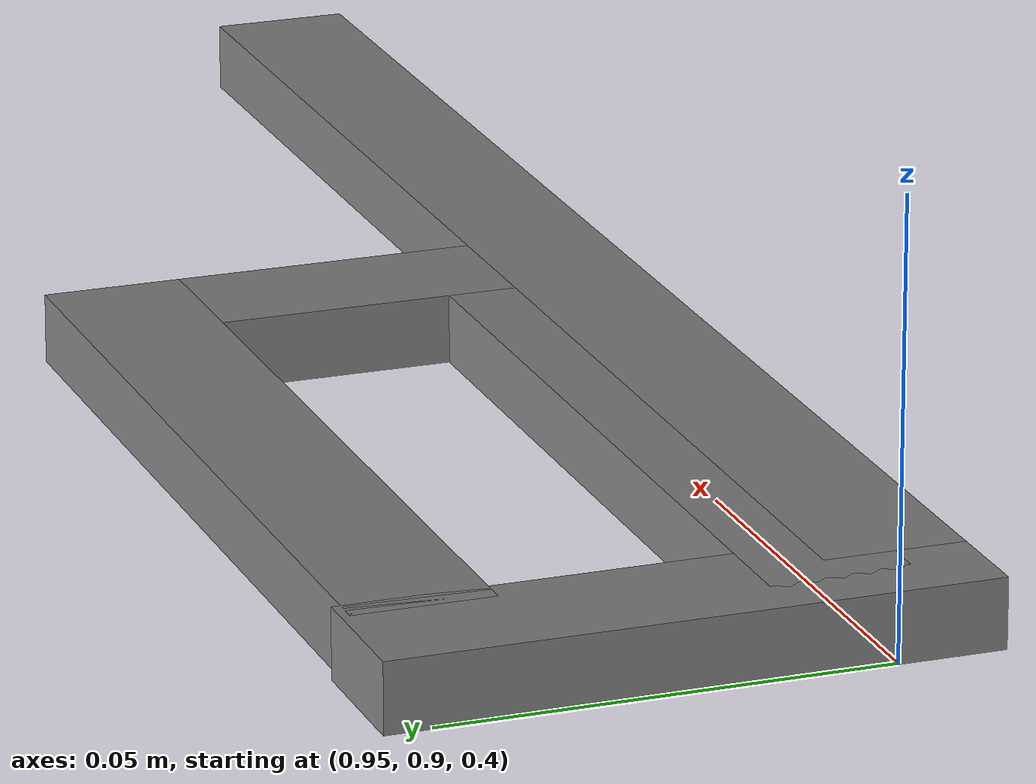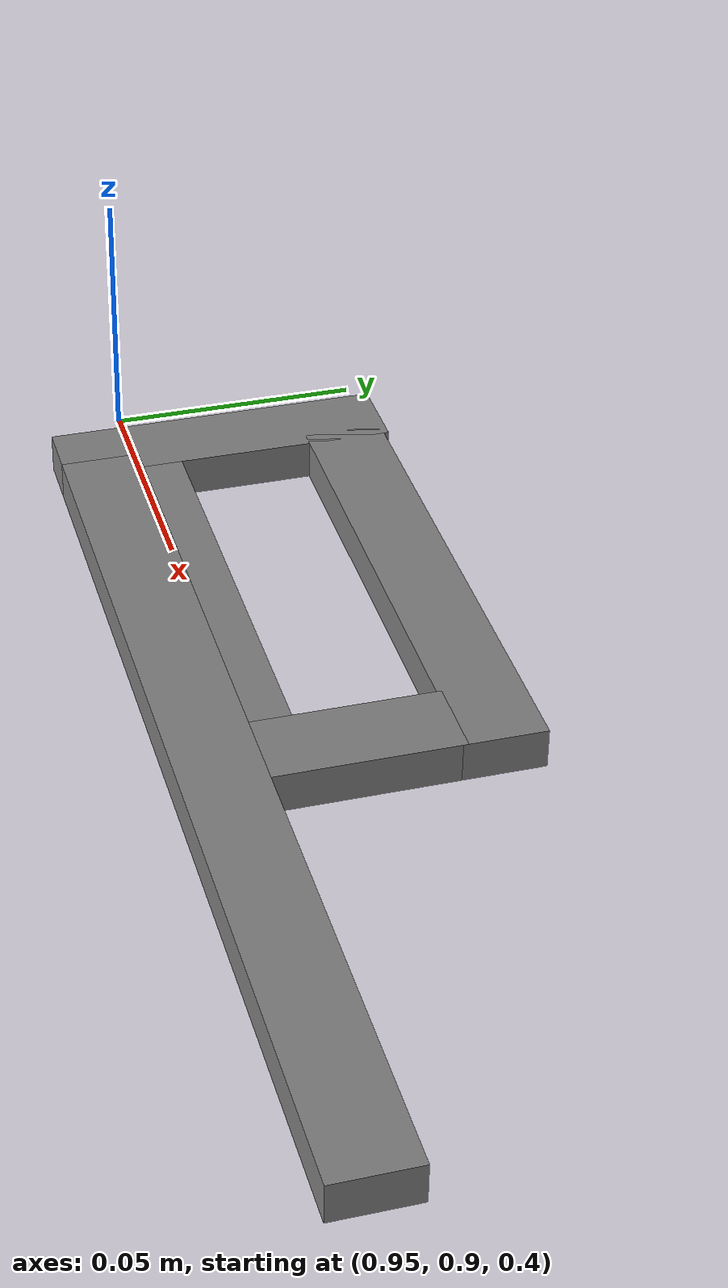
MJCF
<?xml version="1.0" encoding="utf-8"?>
<mujoco>
    <compiler angle="radian" coordinate="local" meshdir="../stls" texturedir="../textures"></compiler>
    <option timestep="0.002" iterations="20" apirate="200">
<!--         gravity="0 0 0" 重力のoptionを追加。重力０に。-->
        <flag warmstart="enable"></flag>
    </option>

    <worldbody>

<!--          箱ひげ図の誤差を計算したはさみモデル  ShadowHandLite用  はさみの形変更, 刃の重なりを無くす-->
<!--         上下反転させたはさみのモデル-->
        <body name="scissors_part0" pos="1.07 0.892 0.4">
            <geom name="scissors" type="sphere" size="0.001 0.001 0.001" condim="4" group="2"
                  contype="0" conaffinity="0" rgba="0.9 0.9 0.1 1"></geom>
            <site name="scissors:center" pos="0 0 0" rgba="1 0 0 0" size="0.01 0.01 0.01"></site>
            <joint name="scissors:joint" type="free" damping="0.01"></joint>
            <body name="scissors_part1_mirror" pos="0 0 0">
                <joint name="scissors_hinge_1:joint" type="hinge" pos="0 0 0" axis="0 0 1" limited="true" range="-0.52358 0.52358" damping="0.1" armature="0.01"></joint>
                <geom name="scissors_part1_mirror" type="box" friction="1.5 0.005 0.0001" size="0.1 0.008 0.004"></geom>

                <body name="scissors_part2_mirror" pos="0 0.024 0">
                    <geom name="scissors_part2_mirror" type="box" friction="1.5 0.005 0.0001" size="0.02 0.008 0.004" euler="0 0 -1.57075"></geom>
                    <body name="scissors_part3_mirror" pos="-0.045 0.027 0">
                        <geom name="scissors_part3_mirror" type="box" friction="1.5 0.005 0.0001" size="0.053 0.008 0.004" euler="0 0 0"></geom>
                        <body name="scissors_part4_mirror" pos="-0.058 -0.025 0">
                            <geom name="scissors_part4_mirror" type="box" friction="1.5 0.005 0.0001" size="0.034 0.008 0.004" euler="0 0 -1.57075"></geom>
                            <body name="scissors_part5_mirror" pos="0.045 -0.018 0">
                                <geom name="scissors_part5_mirror" type="box" friction="1.5 0.005 0.0001" size="0.05 0.008 0.004" euler="0 0 0"></geom>
                            </body>
                        </body>
                    </body>
                </body>
            </body>
        </body>

    </worldbody>

</mujoco>
